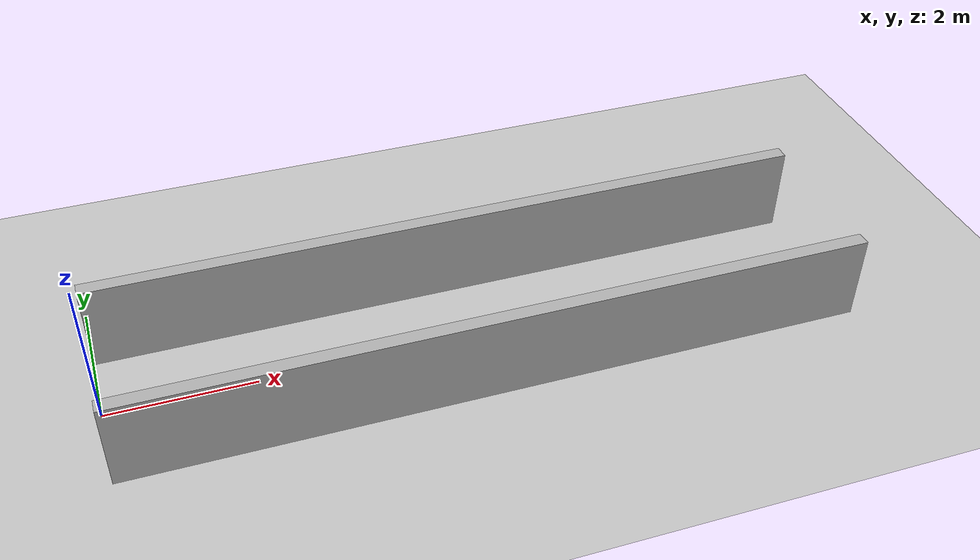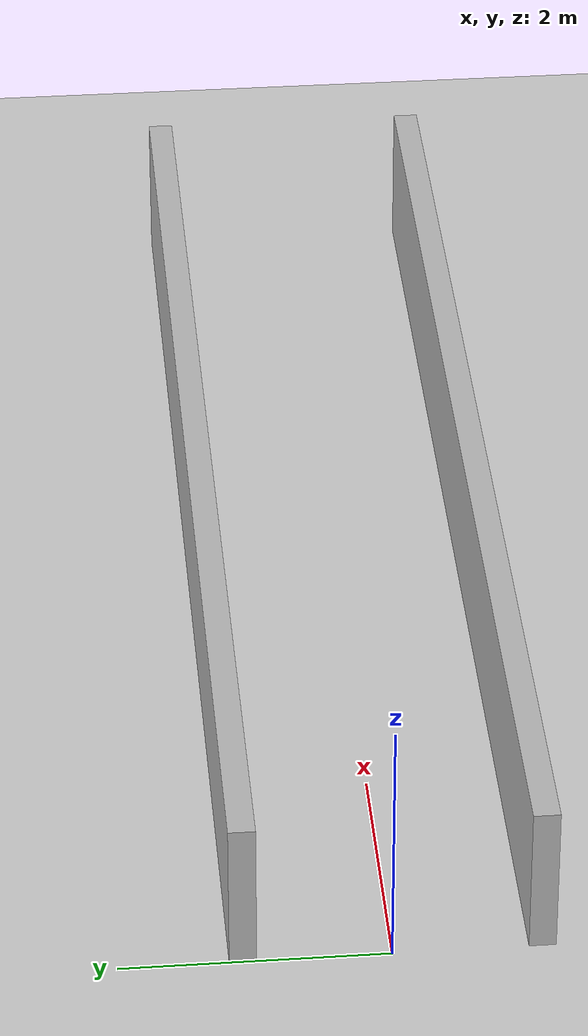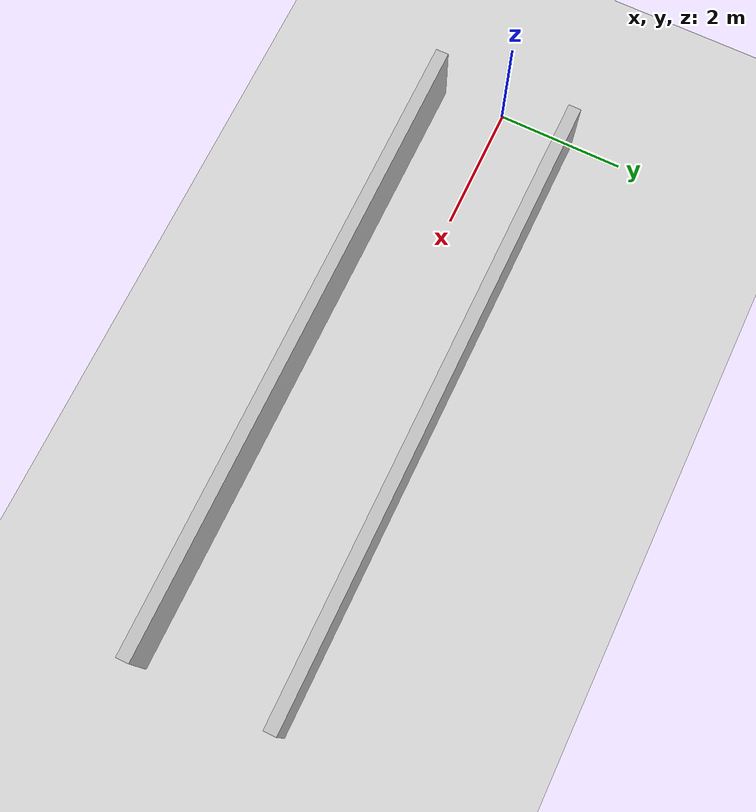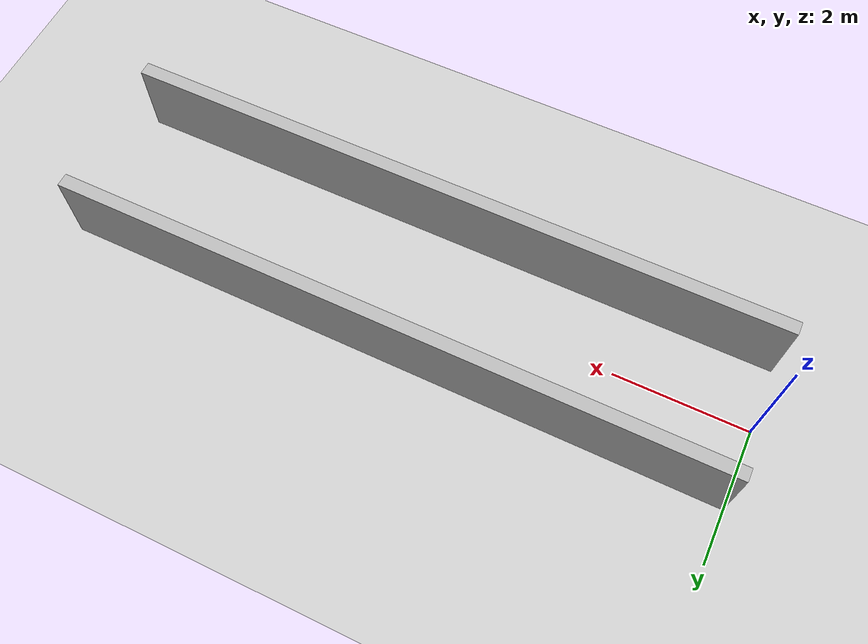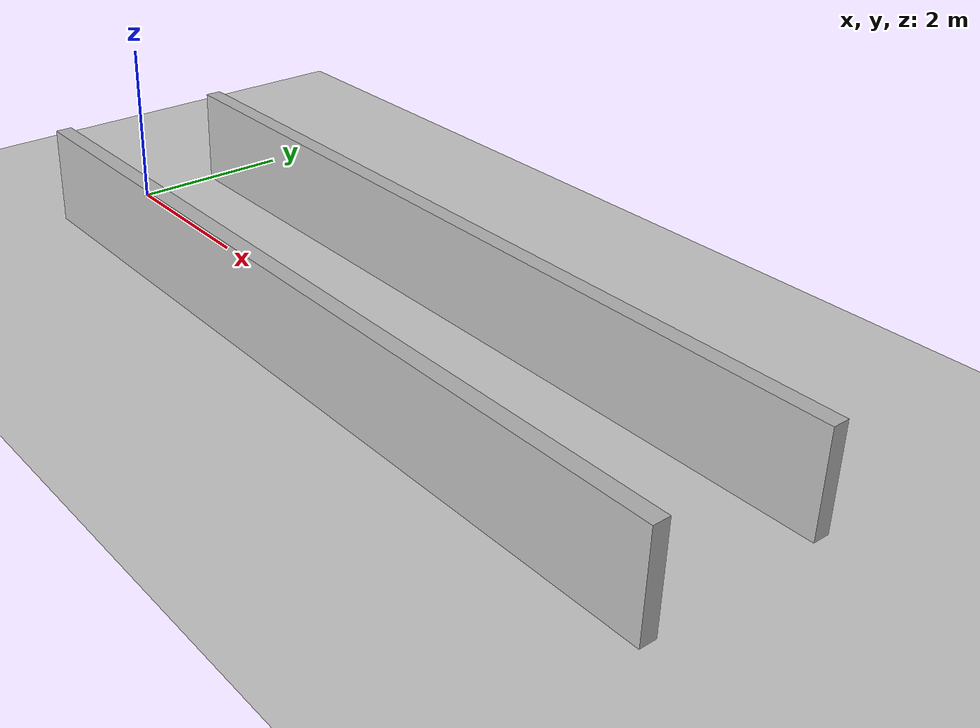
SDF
<?xml version="1.0"?>
<sdf version="1.6">
  <world name="v2-04g-r2-corridor-s4961">
    <gravity>0 0 -9.81</gravity>
    <physics name="v2_deterministic" type="ode">
      <max_step_size>0.002</max_step_size>
      <real_time_update_rate>500</real_time_update_rate>
    </physics>
    <include>
      <uri>model://sun</uri>
    </include>
    <include>
      <uri>model://ground_plane</uri>
    </include>
    <model name="corridor-left">
      <static>true</static>
      <pose>5.004579726 1.087406776 0.600000000 0 0 -0.000611318</pose>
      <link name="link">
        <collision name="collision">
          <geometry>
            <box>
              <size>10.000000 0.200000 1.200000</size>
            </box>
          </geometry>
        </collision>
        <visual name="visual">
          <geometry>
            <box>
              <size>10.000000 0.200000 1.200000</size>
            </box>
          </geometry>
        </visual>
      </link>
    </model>
    <model name="corridor-right">
      <static>true</static>
      <pose>5.008966835 -1.094519636 0.600000000 0 0 -0.000202921</pose>
      <link name="link">
        <collision name="collision">
          <geometry>
            <box>
              <size>10.000000 0.200000 1.200000</size>
            </box>
          </geometry>
        </collision>
        <visual name="visual">
          <geometry>
            <box>
              <size>10.000000 0.200000 1.200000</size>
            </box>
          </geometry>
        </visual>
      </link>
    </model>
  </world>
</sdf>
